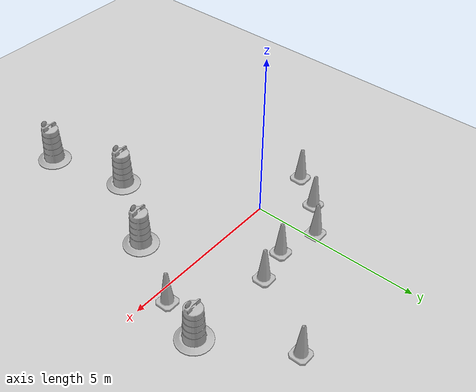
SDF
<sdf version="1.7">
 <world name="default">
  <light name="sun" type="directional">
   <pose>0 0 10 0 -0 0</pose>
   <diffuse>0.8 0.8 0.8 1</diffuse>
   <specular>0.2 0.2 0.2 1</specular>
   <attenuation>
    <range>1000</range>
    <constant>0.9</constant>
    <linear>0.01</linear>
    <quadratic>0.001</quadratic>
   </attenuation>
   <direction>-0.5 0.1 -0.9</direction>
   <spot><inner_angle>0</inner_angle><outer_angle>0</outer_angle><falloff>0</falloff></spot>
  </light>
  <model name="ground_plane">
   <static>1</static>
   <link name="link">
    <collision name="collision">
     <geometry><plane><normal>0 0 1</normal><size>100 100</size></plane></geometry>
     <surface><friction><ode><mu>100</mu><mu2>50</mu2></ode></friction></surface>
    </collision>
    <visual name="visual">
     <cast_shadows>0</cast_shadows>
     <geometry><plane><normal>0 0 1</normal><size>100 100</size></plane></geometry>
     <material>
      <script><uri>file://media/materials/scripts/gazebo.material</uri><name>Gazebo/Grey</name></script>
     </material>
    </visual>
   </link>
  </model>
  <gravity>0 0 -9.8</gravity>
  <magnetic_field>6e-06 2.3e-05 -4.2e-05</magnetic_field>
  <atmosphere type="adiabatic"/>
  <physics type="ode">
   <max_step_size>0.001</max_step_size>
   <real_time_factor>1</real_time_factor>
   <real_time_update_rate>1000</real_time_update_rate>
  </physics>
  <scene><ambient>0.4 0.4 0.4 1</ambient><background>0.7 0.7 0.7 1</background><shadows>1</shadows></scene>
  <spherical_coordinates>
   <surface_model>EARTH_WGS84</surface_model>
   <latitude_deg>0</latitude_deg>
   <longitude_deg>0</longitude_deg>
   <elevation>0</elevation>
   <heading_deg>0</heading_deg>
  </spherical_coordinates>
  <model name="Construction Barrel">
   <link name="link">
    <inertial>
     <pose>0 0 0.4 0 -0 0</pose>
     <mass>500</mass>
     <inertia><ixx>51.2096</ixx><iyy>51.2096</iyy><izz>25</izz><ixy>0</ixy><ixz>0</ixz><iyz>0</iyz></inertia>
    </inertial>
    <collision name="collision">
     <geometry><mesh><uri>model://construction_barrel/meshes/construction_barrel.dae</uri></mesh></geometry>
    </collision>
    <visual name="visual">
     <geometry><mesh><uri>model://construction_barrel/meshes/construction_barrel.dae</uri></mesh></geometry>
    </visual>
   </link>
   <pose>1.76478 -3.78285 0 0 0 -2.1e-05</pose>
  </model>
  <model name="Construction Barrel_clone">
   <link name="link">
    <inertial>
     <pose>0 0 0.4 0 -0 0</pose>
     <mass>500</mass>
     <inertia><ixx>51.2096</ixx><iyy>51.2096</iyy><izz>25</izz><ixy>0</ixy><ixz>0</ixz><iyz>0</iyz></inertia>
    </inertial>
    <collision name="collision">
     <geometry><mesh><uri>model://construction_barrel/meshes/construction_barrel.dae</uri></mesh></geometry>
    </collision>
    <visual name="visual">
     <geometry><mesh><uri>model://construction_barrel/meshes/construction_barrel.dae</uri></mesh></geometry>
    </visual>
   </link>
   <pose>3.22587 -1.61077 0 0 0 -2.1e-05</pose>
  </model>
  <model name="Construction Barrel_clone_1">
   <link name="link">
    <inertial>
     <pose>0 0 0.4 0 -0 0</pose>
     <mass>500</mass>
     <inertia><ixx>51.2096</ixx><iyy>51.2096</iyy><izz>25</izz><ixy>0</ixy><ixz>0</ixz><iyz>0</iyz></inertia>
    </inertial>
    <collision name="collision">
     <geometry><mesh><uri>model://construction_barrel/meshes/construction_barrel.dae</uri></mesh></geometry>
    </collision>
    <visual name="visual">
     <geometry><mesh><uri>model://construction_barrel/meshes/construction_barrel.dae</uri></mesh></geometry>
    </visual>
   </link>
   <pose>2.33158 -6.2392 -2e-06 -1.1e-05 -4e-06 -2.5e-05</pose>
  </model>
  <model name="Construction Barrel_clone_clone">
   <link name="link">
    <inertial>
     <pose>0 0 0.4 0 -0 0</pose>
     <mass>500</mass>
     <inertia><ixx>51.2096</ixx><iyy>51.2096</iyy><izz>25</izz><ixy>0</ixy><ixz>0</ixz><iyz>0</iyz></inertia>
    </inertial>
    <collision name="collision">
     <geometry><mesh><uri>model://construction_barrel/meshes/construction_barrel.dae</uri></mesh></geometry>
    </collision>
    <visual name="visual">
     <geometry><mesh><uri>model://construction_barrel/meshes/construction_barrel.dae</uri></mesh></geometry>
    </visual>
   </link>
   <pose>4.72523 1.68078 0 0 0 -2.6e-05</pose>
  </model>
  <model name="Construction Cone">
   <link name="link">
    <collision name="collision">
     <geometry>
      <mesh><scale>10 10 10</scale><uri>model://construction_cone/meshes/construction_cone.dae</uri></mesh>
     </geometry>
    </collision>
    <visual name="visual">
     <geometry>
      <mesh><scale>10 10 10</scale><uri>model://construction_cone/meshes/construction_cone.dae</uri></mesh>
     </geometry>
    </visual>
    <inertial>
     <inertia><ixx>1</ixx><ixy>0</ixy><ixz>0</ixz><iyy>1</iyy><iyz>0</iyz><izz>1</izz></inertia>
     <mass>1</mass>
    </inertial>
   </link>
   <pose>2.07844 1.77052 -0 1e-06 -0 0</pose>
  </model>
  <model name="Construction Cone_clone">
   <link name="link">
    <collision name="collision">
     <geometry>
      <mesh><scale>10 10 10</scale><uri>model://construction_cone/meshes/construction_cone.dae</uri></mesh>
     </geometry>
    </collision>
    <visual name="visual">
     <geometry>
      <mesh><scale>10 10 10</scale><uri>model://construction_cone/meshes/construction_cone.dae</uri></mesh>
     </geometry>
    </visual>
    <inertial>
     <inertia><ixx>1</ixx><ixy>0</ixy><ixz>0</ixz><iyy>1</iyy><iyz>0</iyz><izz>1</izz></inertia>
     <mass>1</mass>
    </inertial>
   </link>
   <pose>1.03627 1.53465 -0 0 -0 0</pose>
  </model>
  <model name="Construction Cone_clone_0">
   <link name="link">
    <collision name="collision">
     <geometry>
      <mesh><scale>10 10 10</scale><uri>model://construction_cone/meshes/construction_cone.dae</uri></mesh>
     </geometry>
    </collision>
    <visual name="visual">
     <geometry>
      <mesh><scale>10 10 10</scale><uri>model://construction_cone/meshes/construction_cone.dae</uri></mesh>
     </geometry>
    </visual>
    <inertial>
     <inertia><ixx>1</ixx><ixy>0</ixy><ixz>0</ixz><iyy>1</iyy><iyz>0</iyz><izz>1</izz></inertia>
     <mass>1</mass>
    </inertial>
   </link>
   <pose>-0.183454 1.82338 0 0 -0 0</pose>
  </model>
  <model name="Construction Cone_clone_1">
   <link name="link">
    <collision name="collision">
     <geometry>
      <mesh><scale>10 10 10</scale><uri>model://construction_cone/meshes/construction_cone.dae</uri></mesh>
     </geometry>
    </collision>
    <visual name="visual">
     <geometry>
      <mesh><scale>10 10 10</scale><uri>model://construction_cone/meshes/construction_cone.dae</uri></mesh>
     </geometry>
    </visual>
    <inertial>
     <inertia><ixx>1</ixx><ixy>0</ixy><ixz>0</ixz><iyy>1</iyy><iyz>0</iyz><izz>1</izz></inertia>
     <mass>1</mass>
    </inertial>
   </link>
   <pose>-1.10833 1.09479 -0 0 -0 0</pose>
  </model>
  <model name="Construction Cone_clone_2">
   <link name="link">
    <collision name="collision">
     <geometry>
      <mesh><scale>10 10 10</scale><uri>model://construction_cone/meshes/construction_cone.dae</uri></mesh>
     </geometry>
    </collision>
    <visual name="visual">
     <geometry>
      <mesh><scale>10 10 10</scale><uri>model://construction_cone/meshes/construction_cone.dae</uri></mesh>
     </geometry>
    </visual>
    <inertial>
     <inertia><ixx>1</ixx><ixy>0</ixy><ixz>0</ixz><iyy>1</iyy><iyz>0</iyz><izz>1</izz></inertia>
     <mass>1</mass>
    </inertial>
   </link>
   <pose>-1.84968 0.101792 -0 0 -1e-06 0</pose>
  </model>
  <model name="Construction Cone_clone_3">
   <link name="link">
    <collision name="collision">
     <geometry>
      <mesh><scale>10 10 10</scale><uri>model://construction_cone/meshes/construction_cone.dae</uri></mesh>
     </geometry>
    </collision>
    <visual name="visual">
     <geometry>
      <mesh><scale>10 10 10</scale><uri>model://construction_cone/meshes/construction_cone.dae</uri></mesh>
     </geometry>
    </visual>
    <inertial>
     <inertia><ixx>1</ixx><ixy>0</ixy><ixz>0</ixz><iyy>1</iyy><iyz>0</iyz><izz>1</izz></inertia>
     <mass>1</mass>
    </inertial>
   </link>
   <pose>4.29945 0.391032 -0 0 -1e-06 0</pose>
  </model>
  <model name="Construction Cone_clone_4">
   <link name="link">
    <collision name="collision">
     <geometry>
      <mesh><scale>10 10 10</scale><uri>model://construction_cone/meshes/construction_cone.dae</uri></mesh>
     </geometry>
    </collision>
    <visual name="visual">
     <geometry>
      <mesh><scale>10 10 10</scale><uri>model://construction_cone/meshes/construction_cone.dae</uri></mesh>
     </geometry>
    </visual>
    <inertial>
     <inertia><ixx>1</ixx><ixy>0</ixy><ixz>0</ixz><iyy>1</iyy><iyz>0</iyz><izz>1</izz></inertia>
     <mass>1</mass>
    </inertial>
   </link>
   <pose>3.42863 3.94333 -0 0 -0 0</pose>
  </model>
 </world>
</sdf>
